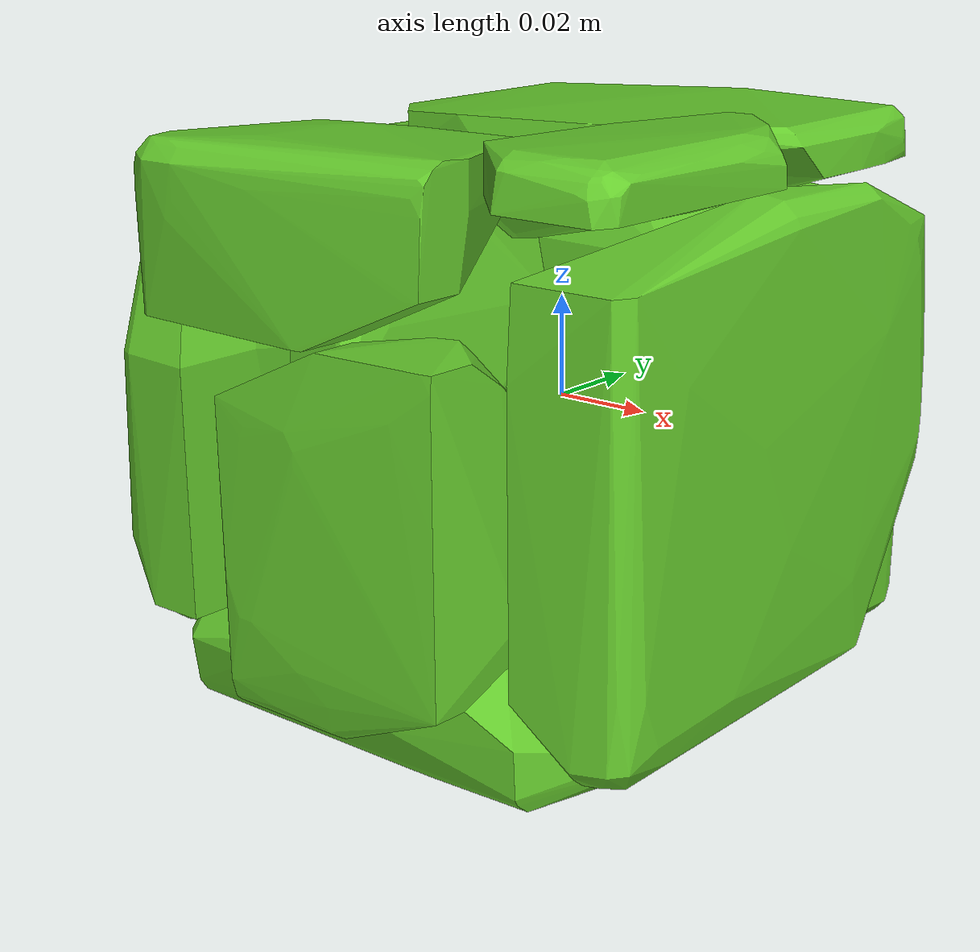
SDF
<?xml version='1.0' encoding='UTF-8'?>
<!-- This SDF was autogenerated by obj_to_drake_sdf.py -->
<sdf version="1.7">
  <model name="expo_box">
    <link name="expo_box">
      <inertial>
        <pose>0 0 0 0 0 0</pose>
        <mass>0.05</mass>
        <inertia>
          <ixx>0.00014545384</ixx>
          <iyy>0.00013174594</iyy>
          <izz>0.00015498668</izz>
          <ixy>-5.6087751e-07</ixy>
          <ixz>1.6649123e-08</ixz>
          <iyz>-1.2009615e-06</iyz>
        </inertia>
      </inertial>
      <visual name="convex_0">
        <pose>0 0 0 0 0 0</pose>
        <geometry>
          <mesh>
            <uri>expo_box_convex_0.obj</uri>
          </mesh>
        </geometry>
        <material>
          <diffuse>0.39215686274509803 0.7843137254901961 0.17254901960784313 1</diffuse>
        </material>
      </visual>
      <collision name="convex_0_volume">
        <pose>0 0 0 0 0 0</pose>
        <geometry>
          <mesh>
            <uri>expo_box_convex_0.obj</uri>
          </mesh>
        </geometry>
        <drake:proximity_properties xmlns:drake="uri:drake">
          <drake:compliant_hydroelastic/>
          <drake:hydroelastic_modulus> 3.0e7 </drake:hydroelastic_modulus>
          <drake:mesh_resolution_hint> 0.02 </drake:mesh_resolution_hint>
          <drake:hunt_crossley_dissipation>10</drake:hunt_crossley_dissipation>
          <drake:mu_dynamic>0.3</drake:mu_dynamic>
        </drake:proximity_properties>
      </collision>
      <visual name="convex_1">
        <pose>0 0 0 0 0 0</pose>
        <geometry>
          <mesh>
            <uri>expo_box_convex_1.obj</uri>
          </mesh>
        </geometry>
        <material>
          <diffuse>0.39215686274509803 0.7843137254901961 0.17254901960784313 1</diffuse>
        </material>
      </visual>
      <collision name="convex_1_volume">
        <pose>0 0 0 0 0 0</pose>
        <geometry>
          <mesh>
            <uri>expo_box_convex_1.obj</uri>
          </mesh>
        </geometry>
        <drake:proximity_properties xmlns:drake="uri:drake">
          <drake:compliant_hydroelastic/>
          <drake:hydroelastic_modulus> 3.0e7 </drake:hydroelastic_modulus>
          <drake:mesh_resolution_hint> 0.02 </drake:mesh_resolution_hint>
          <drake:hunt_crossley_dissipation>10</drake:hunt_crossley_dissipation>
          <drake:mu_dynamic>0.3</drake:mu_dynamic>
        </drake:proximity_properties>
      </collision>
      <visual name="convex_2">
        <pose>0 0 0 0 0 0</pose>
        <geometry>
          <mesh>
            <uri>expo_box_convex_2.obj</uri>
          </mesh>
        </geometry>
        <material>
          <diffuse>0.39215686274509803 0.7843137254901961 0.17254901960784313 1</diffuse>
        </material>
      </visual>
      <collision name="convex_2_volume">
        <pose>0 0 0 0 0 0</pose>
        <geometry>
          <mesh>
            <uri>expo_box_convex_2.obj</uri>
          </mesh>
        </geometry>
        <drake:proximity_properties xmlns:drake="uri:drake">
          <drake:compliant_hydroelastic/>
          <drake:hydroelastic_modulus> 3.0e7 </drake:hydroelastic_modulus>
          <drake:mesh_resolution_hint> 0.02 </drake:mesh_resolution_hint>
          <drake:hunt_crossley_dissipation>10</drake:hunt_crossley_dissipation>
          <drake:mu_dynamic>0.3</drake:mu_dynamic>
        </drake:proximity_properties>
      </collision>
      <visual name="convex_3">
        <pose>0 0 0 0 0 0</pose>
        <geometry>
          <mesh>
            <uri>expo_box_convex_3.obj</uri>
          </mesh>
        </geometry>
        <material>
          <diffuse>0.39215686274509803 0.7843137254901961 0.17254901960784313 1</diffuse>
        </material>
      </visual>
      <collision name="convex_3_volume">
        <pose>0 0 0 0 0 0</pose>
        <geometry>
          <mesh>
            <uri>expo_box_convex_3.obj</uri>
          </mesh>
        </geometry>
        <drake:proximity_properties xmlns:drake="uri:drake">
          <drake:compliant_hydroelastic/>
          <drake:hydroelastic_modulus> 3.0e7 </drake:hydroelastic_modulus>
          <drake:mesh_resolution_hint> 0.02 </drake:mesh_resolution_hint>
          <drake:hunt_crossley_dissipation>10</drake:hunt_crossley_dissipation>
          <drake:mu_dynamic>0.3</drake:mu_dynamic>
        </drake:proximity_properties>
      </collision>
      <visual name="convex_4">
        <pose>0 0 0 0 0 0</pose>
        <geometry>
          <mesh>
            <uri>expo_box_convex_4.obj</uri>
          </mesh>
        </geometry>
        <material>
          <diffuse>0.39215686274509803 0.7843137254901961 0.17254901960784313 1</diffuse>
        </material>
      </visual>
      <collision name="convex_4_volume">
        <pose>0 0 0 0 0 0</pose>
        <geometry>
          <mesh>
            <uri>expo_box_convex_4.obj</uri>
          </mesh>
        </geometry>
        <drake:proximity_properties xmlns:drake="uri:drake">
          <drake:compliant_hydroelastic/>
          <drake:hydroelastic_modulus> 3.0e7 </drake:hydroelastic_modulus>
          <drake:mesh_resolution_hint> 0.02 </drake:mesh_resolution_hint>
          <drake:hunt_crossley_dissipation>10</drake:hunt_crossley_dissipation>
          <drake:mu_dynamic>0.3</drake:mu_dynamic>
        </drake:proximity_properties>
      </collision>
      <visual name="convex_5">
        <pose>0 0 0 0 0 0</pose>
        <geometry>
          <mesh>
            <uri>expo_box_convex_5.obj</uri>
          </mesh>
        </geometry>
        <material>
          <diffuse>0.39215686274509803 0.7843137254901961 0.17254901960784313 1</diffuse>
        </material>
      </visual>
      <collision name="convex_5_volume">
        <pose>0 0 0 0 0 0</pose>
        <geometry>
          <mesh>
            <uri>expo_box_convex_5.obj</uri>
          </mesh>
        </geometry>
        <drake:proximity_properties xmlns:drake="uri:drake">
          <drake:compliant_hydroelastic/>
          <drake:hydroelastic_modulus> 3.0e7 </drake:hydroelastic_modulus>
          <drake:mesh_resolution_hint> 0.02 </drake:mesh_resolution_hint>
          <drake:hunt_crossley_dissipation>10</drake:hunt_crossley_dissipation>
          <drake:mu_dynamic>0.3</drake:mu_dynamic>
        </drake:proximity_properties>
      </collision>
      <visual name="convex_6">
        <pose>0 0 0 0 0 0</pose>
        <geometry>
          <mesh>
            <uri>expo_box_convex_6.obj</uri>
          </mesh>
        </geometry>
        <material>
          <diffuse>0.39215686274509803 0.7843137254901961 0.17254901960784313 1</diffuse>
        </material>
      </visual>
      <collision name="convex_6_volume">
        <pose>0 0 0 0 0 0</pose>
        <geometry>
          <mesh>
            <uri>expo_box_convex_6.obj</uri>
          </mesh>
        </geometry>
        <drake:proximity_properties xmlns:drake="uri:drake">
          <drake:compliant_hydroelastic/>
          <drake:hydroelastic_modulus> 3.0e7 </drake:hydroelastic_modulus>
          <drake:mesh_resolution_hint> 0.02 </drake:mesh_resolution_hint>
          <drake:hunt_crossley_dissipation>10</drake:hunt_crossley_dissipation>
          <drake:mu_dynamic>0.3</drake:mu_dynamic>
        </drake:proximity_properties>
      </collision>
      <visual name="convex_7">
        <pose>0 0 0 0 0 0</pose>
        <geometry>
          <mesh>
            <uri>expo_box_convex_7.obj</uri>
          </mesh>
        </geometry>
        <material>
          <diffuse>0.39215686274509803 0.7843137254901961 0.17254901960784313 1</diffuse>
        </material>
      </visual>
      <collision name="convex_7_volume">
        <pose>0 0 0 0 0 0</pose>
        <geometry>
          <mesh>
            <uri>expo_box_convex_7.obj</uri>
          </mesh>
        </geometry>
        <drake:proximity_properties xmlns:drake="uri:drake">
          <drake:compliant_hydroelastic/>
          <drake:hydroelastic_modulus> 3.0e7 </drake:hydroelastic_modulus>
          <drake:mesh_resolution_hint> 0.02 </drake:mesh_resolution_hint>
          <drake:hunt_crossley_dissipation>10</drake:hunt_crossley_dissipation>
          <drake:mu_dynamic>0.3</drake:mu_dynamic>
        </drake:proximity_properties>
      </collision>
      <visual name="convex_8">
        <pose>0 0 0 0 0 0</pose>
        <geometry>
          <mesh>
            <uri>expo_box_convex_8.obj</uri>
          </mesh>
        </geometry>
        <material>
          <diffuse>0.39215686274509803 0.7843137254901961 0.17254901960784313 1</diffuse>
        </material>
      </visual>
      <collision name="convex_8_volume">
        <pose>0 0 0 0 0 0</pose>
        <geometry>
          <mesh>
            <uri>expo_box_convex_8.obj</uri>
          </mesh>
        </geometry>
        <drake:proximity_properties xmlns:drake="uri:drake">
          <drake:compliant_hydroelastic/>
          <drake:hydroelastic_modulus> 3.0e7 </drake:hydroelastic_modulus>
          <drake:mesh_resolution_hint> 0.02 </drake:mesh_resolution_hint>
          <drake:hunt_crossley_dissipation>10</drake:hunt_crossley_dissipation>
          <drake:mu_dynamic>0.3</drake:mu_dynamic>
        </drake:proximity_properties>
      </collision>
      <visual name="convex_9">
        <pose>0 0 0 0 0 0</pose>
        <geometry>
          <mesh>
            <uri>expo_box_convex_9.obj</uri>
          </mesh>
        </geometry>
        <material>
          <diffuse>0.39215686274509803 0.7843137254901961 0.17254901960784313 1</diffuse>
        </material>
      </visual>
      <collision name="convex_9_volume">
        <pose>0 0 0 0 0 0</pose>
        <geometry>
          <mesh>
            <uri>expo_box_convex_9.obj</uri>
          </mesh>
        </geometry>
        <drake:proximity_properties xmlns:drake="uri:drake">
          <drake:compliant_hydroelastic/>
          <drake:hydroelastic_modulus> 3.0e7 </drake:hydroelastic_modulus>
          <drake:mesh_resolution_hint> 0.02 </drake:mesh_resolution_hint>
          <drake:hunt_crossley_dissipation>10</drake:hunt_crossley_dissipation>
          <drake:mu_dynamic>0.3</drake:mu_dynamic>
        </drake:proximity_properties>
      </collision>
    </link>
  </model>
</sdf>
